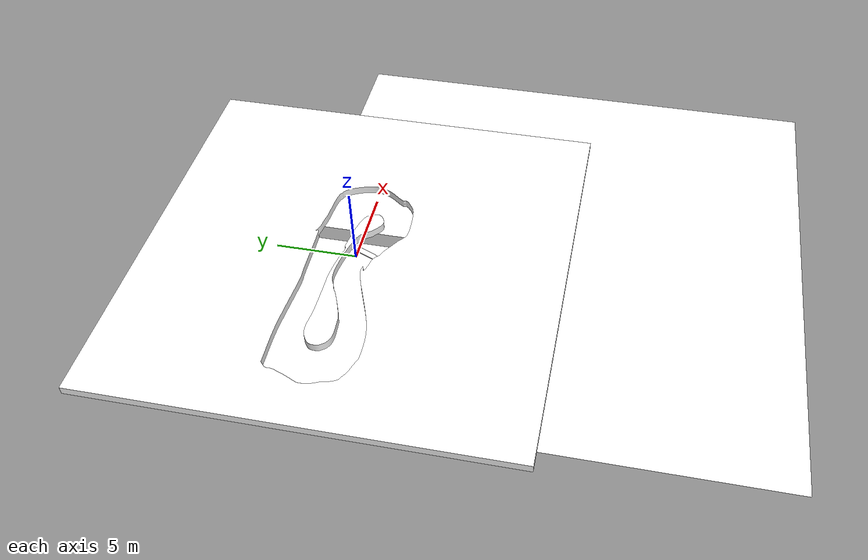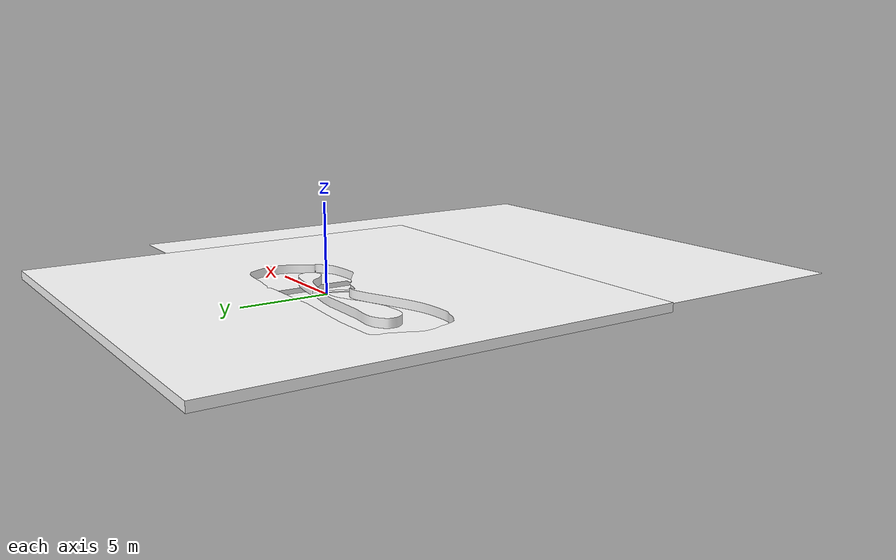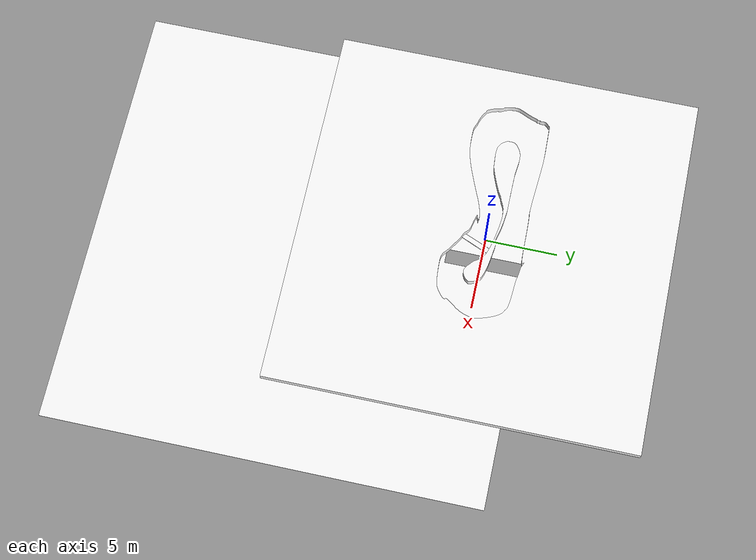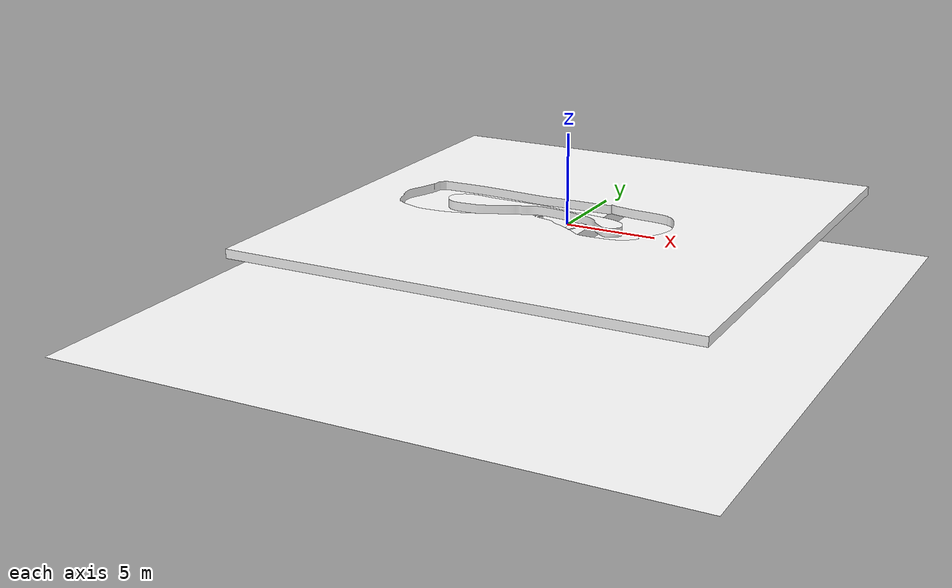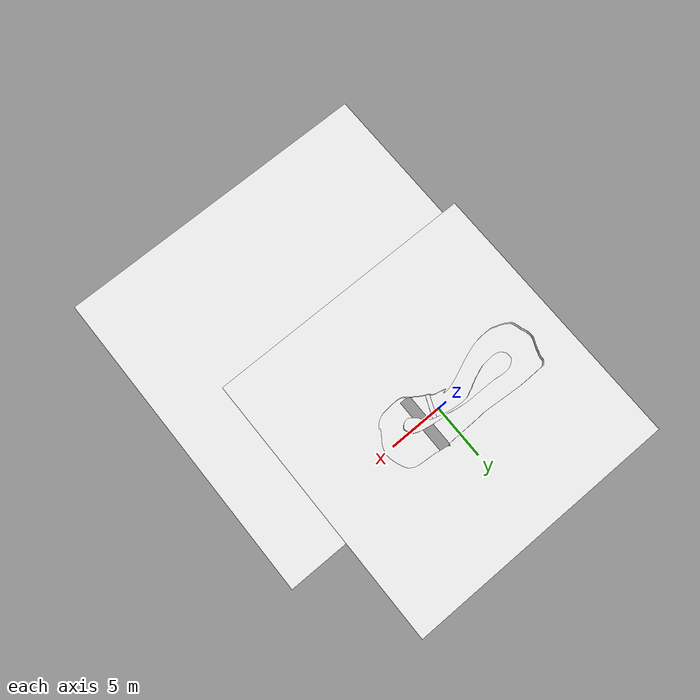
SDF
<?xml version="1.0" encoding="UTF-8"?>
<sdf version="1.6">
  <world name="porto">
    <gravity>0 0 -9.8</gravity>
    <model name="floor">
      <static>1</static>
      <pose frame="">0 0 0 0 0 0</pose>
      <link name="link_d0">
        <inertial>
          <mass>0</mass>
          <inertia>
            <ixx>0.166667</ixx>
            <ixy>0</ixy>
            <ixz>0</ixz>
            <iyy>0.166667</iyy>
            <iyz>0</iyz>
            <izz>0.166667</izz>
          </inertia>
        </inertial>
        <collision concave="yes" name="collision_0">
          <geometry>
            <mesh>
              <scale>1 1 1</scale>
              <uri>./meshes/floor.obj</uri>
            </mesh>
          </geometry>
        </collision>
        <visual name="visual">
          <geometry>
            <mesh>
              <scale>1 1 1</scale>
              <uri>./meshes/floor.obj</uri>
            </mesh>
          </geometry>
          <material>
            <ambient>1 1 1 1</ambient>
            <diffuse>1 1 1 1</diffuse>
            <specular>0.1 0.1 0.1 1</specular>
            <emissive>0 0 0 0</emissive>
          </material>
        </visual>
      </link>
    </model>
    <model name="walls">
      <static>1</static>
      <pose frame="">0 0 0 0 0 0</pose>
      <link name="link_d0">
        <inertial>
          <mass>0</mass>
          <inertia>
            <ixx>0.166667</ixx>
            <ixy>0</ixy>
            <ixz>0</ixz>
            <iyy>0.166667</iyy>
            <iyz>0</iyz>
            <izz>0.166667</izz>
          </inertia>
        </inertial>
        <collision concave="yes" name="collision_0">
          <geometry>
            <mesh>
              <scale>1 1 1</scale>
              <uri>./meshes/walls.obj</uri>
            </mesh>
          </geometry>
        </collision>
        <visual name="visual">
          <geometry>
            <mesh>
              <scale>1 1 1</scale>
              <uri>./meshes/walls.obj</uri>
            </mesh>
          </geometry>
          <material>
            <ambient>1 1 1 1</ambient>
            <diffuse>1 1 1 1</diffuse>
            <specular>0.1 0.1 0.1 1</specular>
            <emissive>0 0 0 0</emissive>
          </material>
        </visual>
      </link>
    </model>
       <model name="finish_line">
      <static>1</static>
      <pose frame="">0 0 0 0 0 0</pose>
      <link name="link_d0">
        <inertial>
          <mass>0</mass>
          <inertia>
            <ixx>0.166667</ixx>
            <ixy>0</ixy>
            <ixz>0</ixz>
            <iyy>0.166667</iyy>
            <iyz>0</iyz>
            <izz>0.166667</izz>
          </inertia>
        </inertial>
        <collision concave="yes" name="collision_0">
          <geometry>
            <mesh>
              <scale>1 1 1</scale>
              <uri>./meshes/finish_line.obj</uri>
            </mesh>
          </geometry>
        </collision>
        <visual name="visual">
          <geometry>
            <mesh>
              <scale>1 1 1</scale>
              <uri>./meshes/finish_line.obj</uri>
            </mesh>
          </geometry>
          <material>
            <ambient>1 1 1 1</ambient>
            <diffuse>1 1 1 1</diffuse>
            <specular>0.1 0.1 0.1 1</specular>
            <emissive>0 0 0 0</emissive>
          </material>
        </visual>
      </link>
    </model>
  </world>
</sdf>
